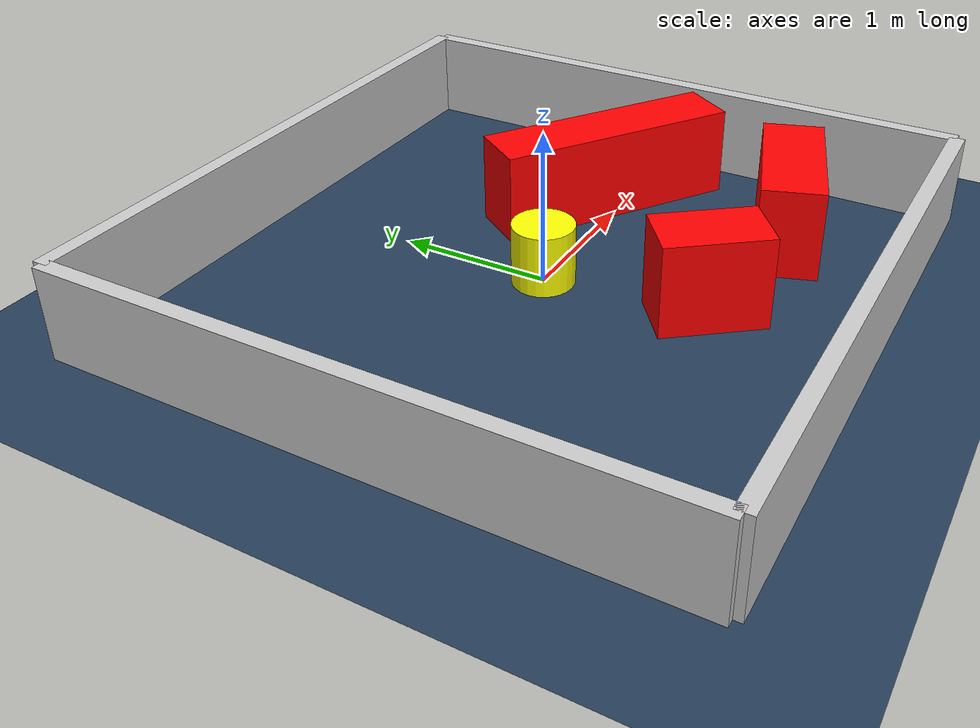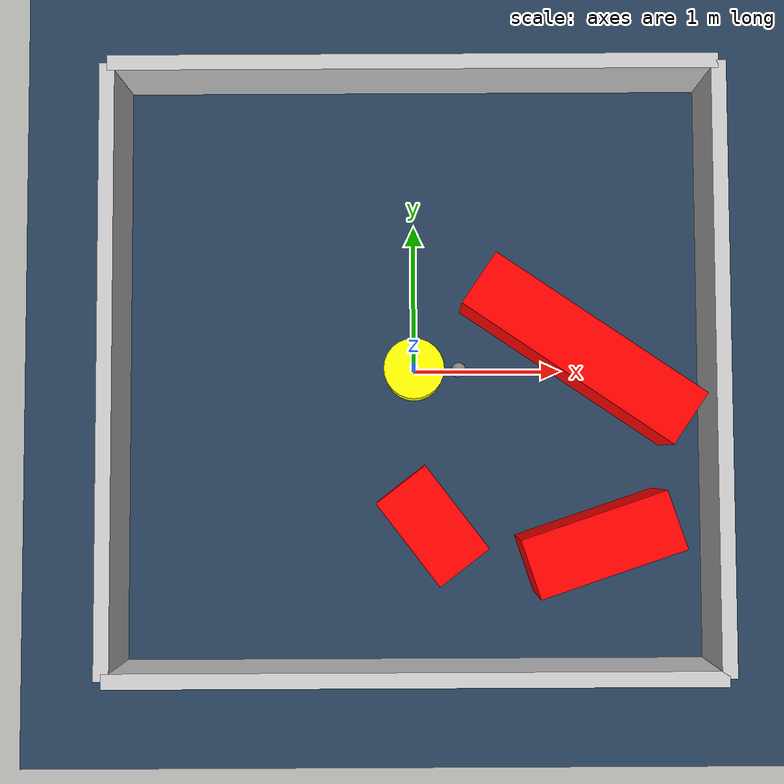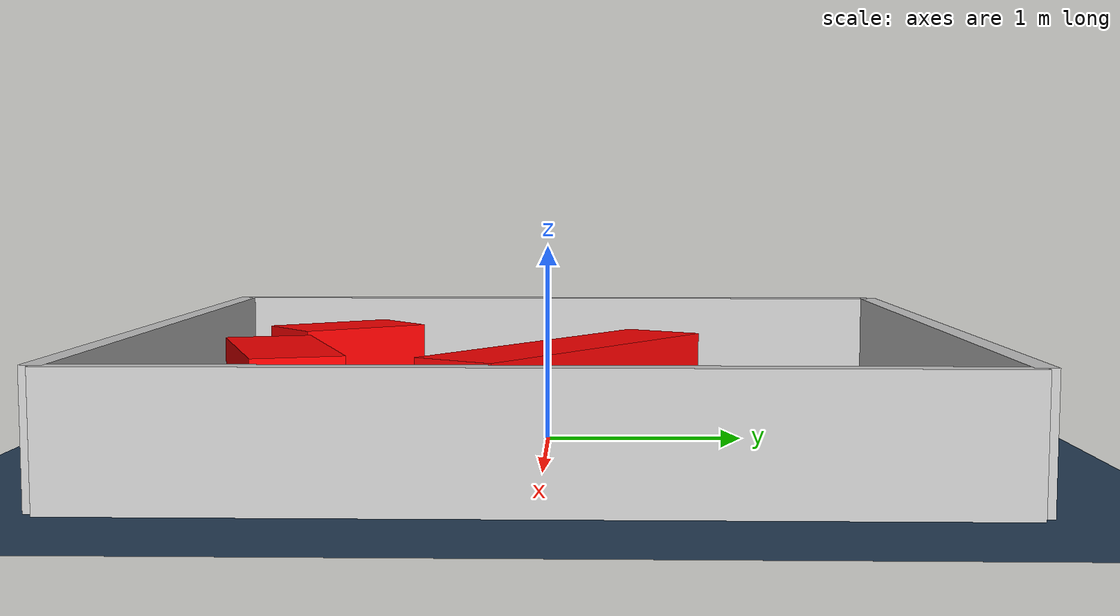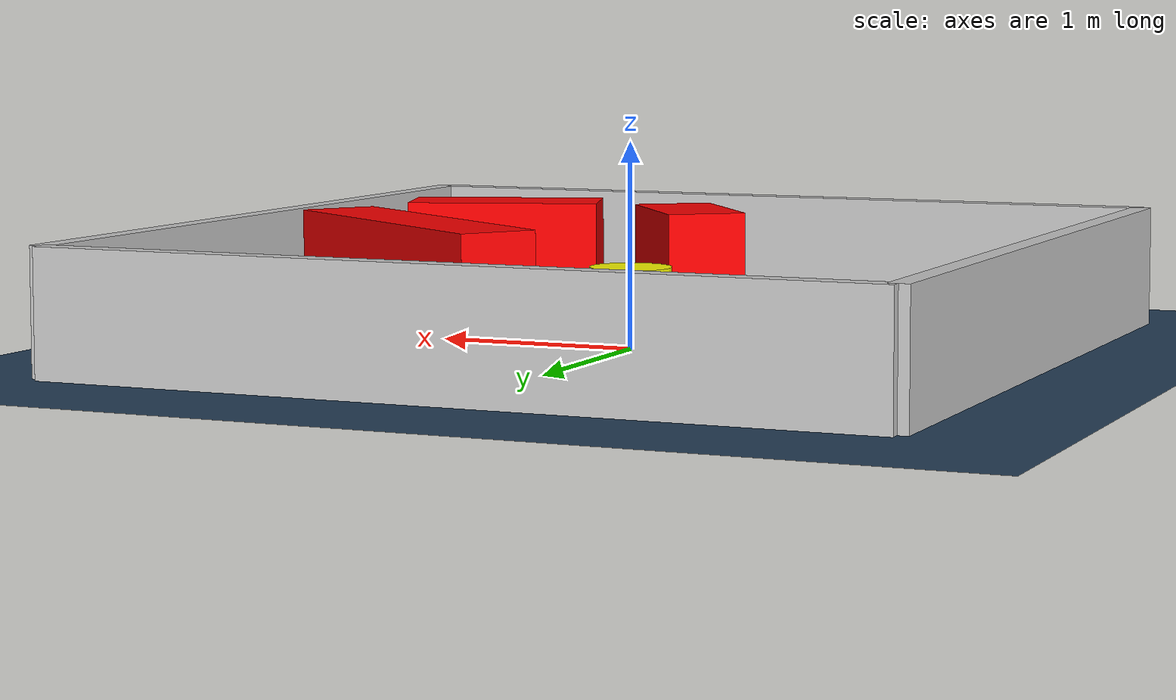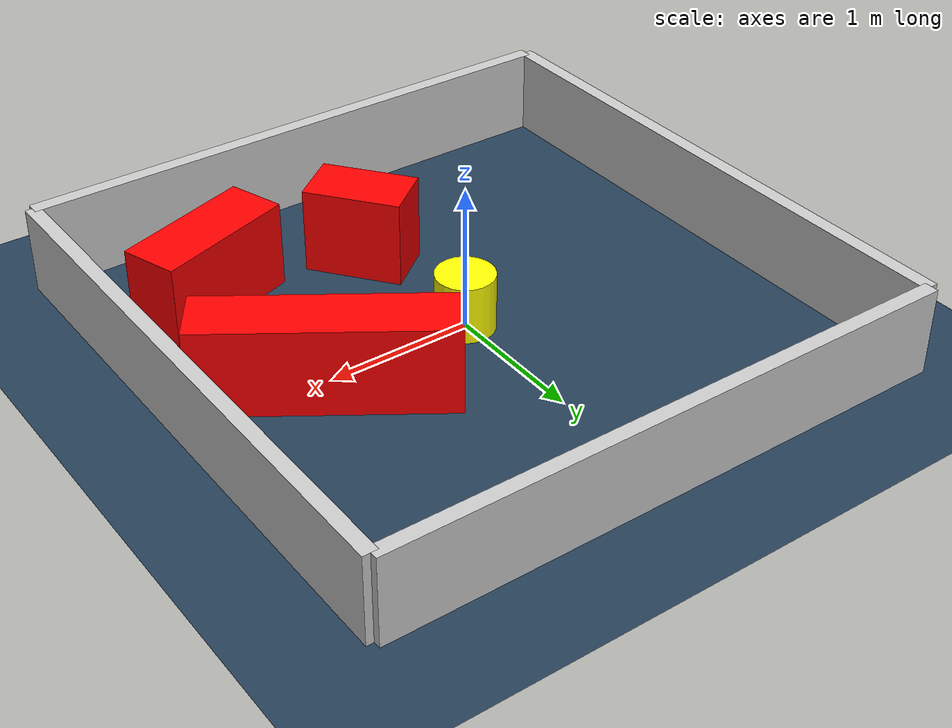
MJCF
<?xml version="1.0" ?>
<mujoco model="generated_environment">
  <option timestep="0.01" integrator="RK4" cone="elliptic"/>
  <default>
    <geom density="1"/>
  </default>
  <asset>
    <texture builtin="gradient" height="3072" rgb1="0.3 0.5 0.7" rgb2="0 0 0" type="skybox" width="512"/>
    <texture builtin="checker" height="300" mark="edge" markrgb="0.8 0.8 0.8" name="groundplane" rgb1="0.2 0.3 0.4" rgb2="0.1 0.2 0.3" type="2d" width="300"/>
    <material name="groundplane" reflectance="0.2" texrepeat="5 5" texture="groundplane" texuniform="true"/>
    <material name="robot" rgba="0.0 1.0 0.0 1"/>
  </asset>
  <worldbody>
    <light dir="0 0 -1" directional="true" pos="0 0 1.5"/>
    <geom condim="4" friction="1.0 0.005 0.001" material="groundplane" name="floor" size="0 0 0.05" type="plane"/>
    <body name="walls">
      <geom name="wall_1" condim="4" pos="-2.0 0.0 0.3" rgba="0.800000011920929 0.800000011920929 0.800000011920929 1.0" size="0.05 2.0 0.3" type="box"/>
      <geom name="wall_2" condim="4" pos="2.0 0.0 0.3" rgba="0.800000011920929 0.800000011920929 0.800000011920929 1.0" size="0.05 2.0 0.3" type="box"/>
      <geom name="wall_3" condim="4" pos="0.0 -2.0 0.3" rgba="0.800000011920929 0.800000011920929 0.800000011920929 1.0" size="2.0 0.05 0.3" type="box"/>
      <geom name="wall_4" condim="4" pos="0.0 2.0 0.3" rgba="0.800000011920929 0.800000011920929 0.800000011920929 1.0" size="2.0 0.05 0.3" type="box"/>
    </body>
    <body name="robot">
      <joint name="joint_x" type="slide" pos="0 0 0" axis="1 0 0"/>
      <joint name="joint_y" type="slide" pos="0 0 0" axis="0 1 0"/>
      <geom name="robot" type="sphere" pos="0.3 0.0 0.2" size="0.05" mass="5." friction="1.0 0.005 0.0001" condim="4" rgba="0.5 0.5 0.5 1.0"/>
      <site name="sensor_ball"/>
    </body>
    <body name="obstacle_movable_1">
      <geom name="obstacle_movable_1" condim="4" pos="0.0 0.0 0.2" euler="0 0 0.0" friction="1.0 0.005 0.001" rgba="1.0 1.0 0.0 1.0" size="0.2 0.2 0.0" type="cylinder" mass="0.1"/>
      <joint type="free"/>
    </body>
    <body name="obstacle_2_static">
      <geom name="obstacle_2_static" condim="4" pos="1.2139616003325946 -1.150463692327469 0.3" euler="0 0 198.52165242166356" friction="1.0 0.005 0.001" rgba="1 0 0 1" size="0.49734333156743643 0.2 0.3" type="box"/>
    </body>
    <body name="obstacle_3_static">
      <geom name="obstacle_3_static" condim="4" pos="1.1036903954560278 0.11623722273670567 0.3" euler="0 0 325.87259626864557" friction="1.0 0.005 0.001" rgba="1 0 0 1" size="0.8209733599393703 0.2 0.3" type="box"/>
    </body>
    <body name="obstacle_4_static">
      <geom name="obstacle_4_static" condim="4" pos="0.11526788885319772 -1.026515991107261 0.3" euler="0 0 307.50311484137916" friction="1.0 0.005 0.001" rgba="1 0 0 1" size="0.33564334388950595 0.2 0.3" type="box"/>
    </body>
  </worldbody>
  <actuator>
    <motor name="actuator_x" joint="joint_x" gear="1" ctrlrange="-1 1"/>
    <motor name="actuator_y" joint="joint_y" gear="1" ctrlrange="-1 1"/>
  </actuator>
</mujoco>
